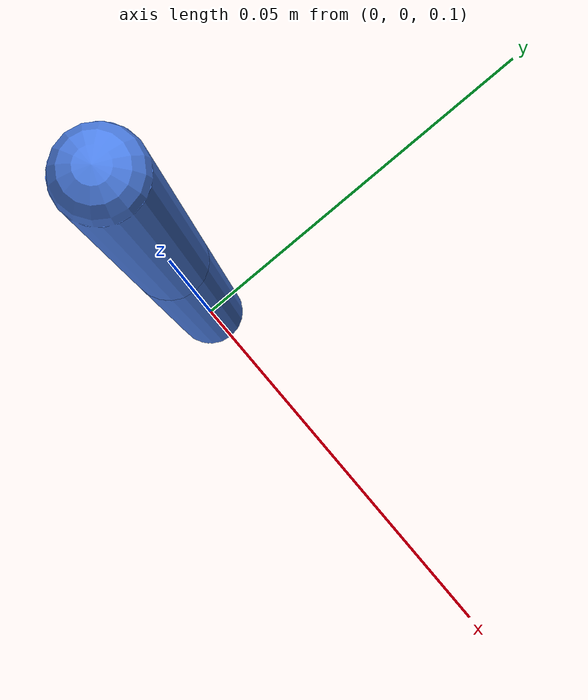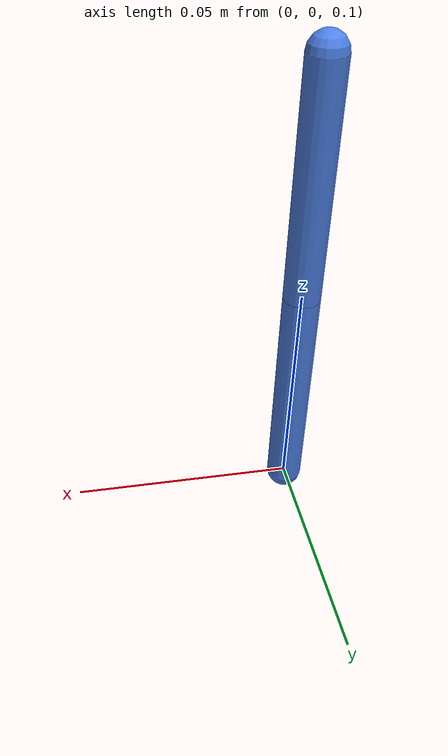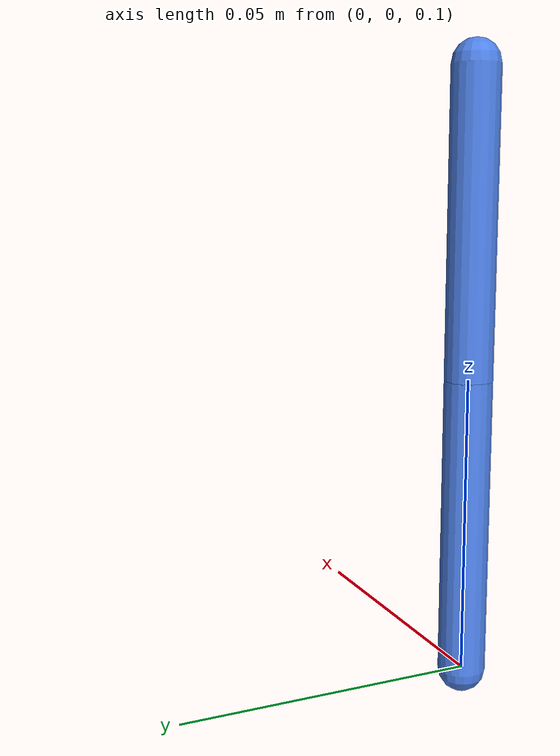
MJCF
<mujoco model="double_pendulum">
  <option timestep="0.002" integrator="RK4" gravity="0 0 -9.81"/>

  <default>
    <joint type="hinge" axis="0 1 0"/>
    <geom type="capsule" rgba="0.3 0.5 0.9 1"/>
  </default>

  <worldbody>
    <camera name="side" pos="0 0.4 0.1" mode="targetbody" target="link1"/>
    <body name="link1" pos="0 0 0.2">
      <joint name="q1"
             damping="7.634058385430087e-12"
             armature="0"/>
      <inertial pos="0 0 -0.05" mass="0.10548177618443695"
                diaginertia="0.00046166221821039165 0.00046166221821039165 1e-6"/> <!-- Why is the diaginertial like this? -->
      <geom fromto="0 0 0  0 0 -0.05" size="0.004"/>

      <body name="link2" pos="0 0 -0.05">
        <joint name="q2"
               damping="0.0005106535523065844"
               armature="0"/>
        <inertial pos="0 0 -0.03670036749567022" mass="0.07619744360415454"
                  diaginertia="0.00023702395072092597 0.00023702395072092597 1e-6"/>
        <geom fromto="0 0 0  0 0 -0.05" size="0.004"/>
      </body>
    </body>
  </worldbody>

  <actuator>
    <motor name="u1" joint="q1" gear="1" ctrlrange="-0.1 0.1" ctrllimited="true"/>
    <motor name="u2" joint="q2" gear="1" ctrlrange="-0.1 0.1" ctrllimited="true"/>
  </actuator>
</mujoco>
